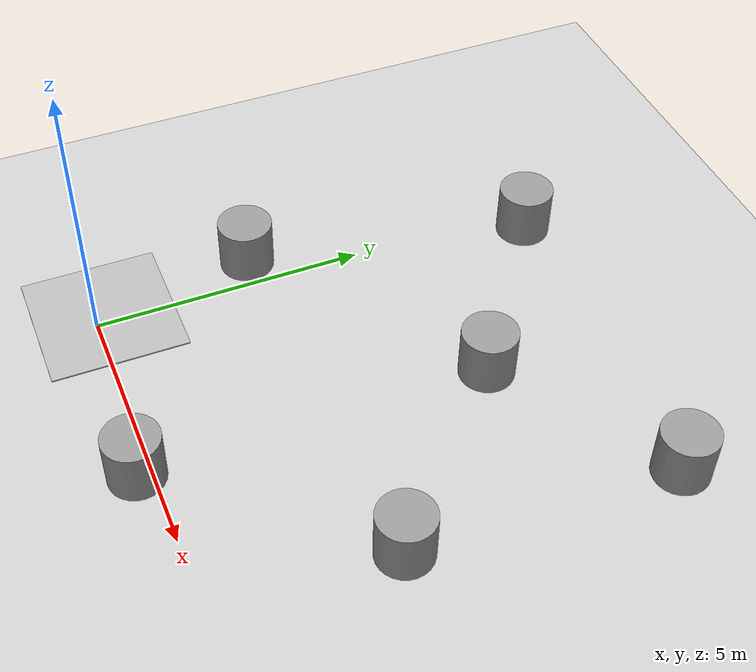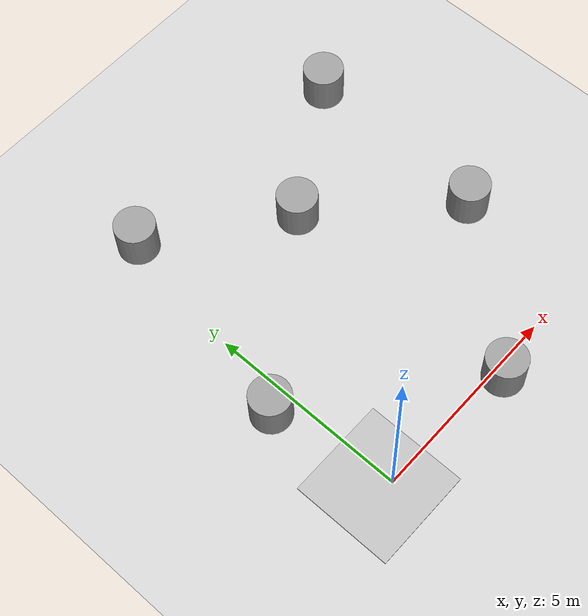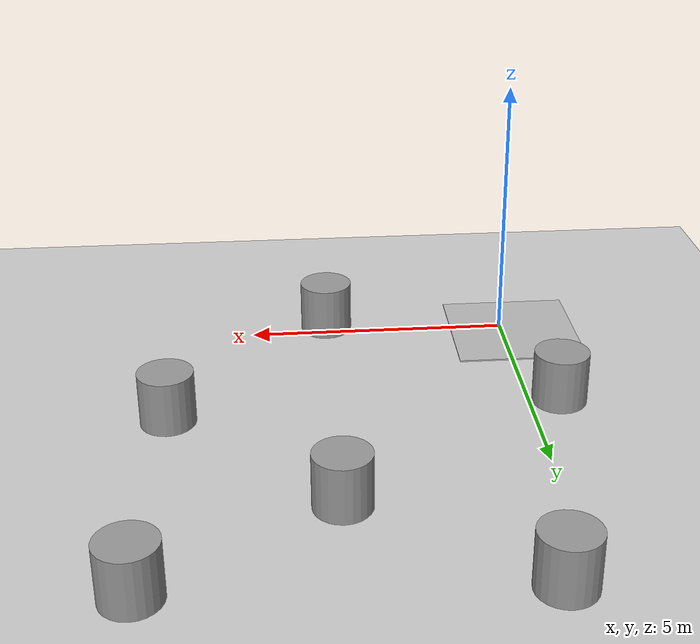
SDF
<sdf version="1.6">
 <world name="default">
  <light name="sun" type="directional">
   <pose>0 0 10 0 -0 0</pose>
   <diffuse>0.8 0.8 0.8 1</diffuse>
   <specular>0.2 0.2 0.2 1</specular>
   <attenuation>
    <range>1000</range>
    <constant>0.9</constant>
    <linear>0.01</linear>
    <quadratic>0.001</quadratic>
   </attenuation>
   <direction>-0.5 0.1 -0.9</direction>
  </light>
  <model name="ground_plane">
   <static>1</static>
   <link name="link">
    <collision name="collision">
     <geometry><plane><normal>0 0 1</normal><size>100 100</size></plane></geometry>
     <surface>
      <contact><collide_bitmask>65535</collide_bitmask></contact>
      <friction><ode><mu>100</mu><mu2>50</mu2></ode></friction>
     </surface>
    </collision>
    <visual name="visual">
     <cast_shadows>0</cast_shadows>
     <geometry><plane><normal>0 0 1</normal><size>100 100</size></plane></geometry>
     <material>
      <script><uri>file://media/materials/scripts/gazebo.material</uri><name>Gazebo/Grey</name></script>
     </material>
    </visual>
   </link>
  </model>
  <gravity>0 0 -9.8</gravity>
  <magnetic_field>6e-06 2.3e-05 -4.2e-05</magnetic_field>
  <atmosphere type="adiabatic"/>
  <physics name="default_physics" default="0" type="ode">
   <max_step_size>0.001</max_step_size>
   <real_time_factor>1</real_time_factor>
   <real_time_update_rate>1000</real_time_update_rate>
  </physics>
  <scene><ambient>0.4 0.4 0.4 1</ambient><background>0.7 0.7 0.7 1</background><shadows>1</shadows></scene>
  <audio><device>default</device></audio>
  <spherical_coordinates>
   <surface_model>EARTH_WGS84</surface_model>
   <latitude_deg>0</latitude_deg>
   <longitude_deg>0</longitude_deg>
   <elevation>0</elevation>
   <heading_deg>0</heading_deg>
  </spherical_coordinates>
  <model name="my_ground_plane">
   <static>1</static>
   <link name="link">
    <collision name="collision"><geometry><box><size>2.5 2.5 0.03</size></box></geometry></collision>
    <visual name="visual">
     <cast_shadows>0</cast_shadows>
     <geometry><box><size>2.5 2.5 0.03</size></box></geometry>
     <material>
      <script>
       <uri>model://my_ground_plane/materials/scripts</uri>
       <uri>model://my_ground_plane/materials/textures/</uri>
       <name>MyGroundPlane/Image</name>
      </script>
     </material>
    </visual>
   </link>
   <pose>-0.2313 0.186561 0 0 -0 0</pose>
  </model>
  <model name="unit_cylinder">
   <link name="link">
    <inertial>
     <mass>1</mass>
     <inertia><ixx>0.145833</ixx><ixy>0</ixy><ixz>0</ixz><iyy>0.145833</iyy><iyz>0</iyz><izz>0.125</izz></inertia>
    </inertial>
    <visual name="visual">
     <geometry><cylinder><radius>0.5</radius><length>1</length></cylinder></geometry>
     <material>
      <script><name>Gazebo/Grey</name><uri>file://media/materials/scripts/gazebo.material</uri></script>
     </material>
    </visual>
    <collision name="collision">
     <geometry><cylinder><radius>0.5</radius><length>1</length></cylinder></geometry>
     <surface>
      <friction>
       <ode><mu>1</mu><mu2>1</mu2><fdir1>0 0 0</fdir1><slip1>0</slip1><slip2>0</slip2></ode>
       <torsional>
        <coefficient>1</coefficient>
        <patch_radius>0</patch_radius>
        <surface_radius>0</surface_radius>
        <use_patch_radius>1</use_patch_radius>
        <ode><slip>0</slip></ode>
       </torsional>
      </friction>
      <bounce><restitution_coefficient>0</restitution_coefficient><threshold>1e+06</threshold></bounce>
      <contact>
       <collide_without_contact>0</collide_without_contact>
       <collide_without_contact_bitmask>1</collide_without_contact_bitmask>
       <collide_bitmask>1</collide_bitmask>
       <ode>
        <soft_cfm>0</soft_cfm>
        <soft_erp>0.2</soft_erp>
        <kp>1e+13</kp>
        <kd>1</kd>
        <max_vel>0.01</max_vel>
        <min_depth>0</min_depth>
       </ode>
       <bullet>
        <split_impulse>1</split_impulse>
        <split_impulse_penetration_threshold>-0.01</split_impulse_penetration_threshold>
        <soft_cfm>0</soft_cfm>
        <soft_erp>0.2</soft_erp>
        <kp>1e+13</kp>
        <kd>1</kd>
       </bullet>
      </contact>
     </surface>
    </collision>
   </link>
   <static>1</static>
   <pose>3.53057 -0.237172 0.5 0 -0 0</pose>
  </model>
  <light name="user_point_light_0" type="point">
   <pose>3.15989 4.33594 1 0 -0 0</pose>
   <diffuse>0.5 0.5 0.5 1</diffuse>
   <specular>0.1 0.1 0.1 1</specular>
   <attenuation>
    <range>20</range>
    <constant>0.5</constant>
    <linear>0.01</linear>
    <quadratic>0.001</quadratic>
   </attenuation>
   <cast_shadows>0</cast_shadows>
   <direction>0 0 -1</direction>
  </light>
  <model name="unit_cylinder_3">
   <link name="link">
    <inertial>
     <mass>1</mass>
     <inertia><ixx>0.145833</ixx><ixy>0</ixy><ixz>0</ixz><iyy>0.145833</iyy><iyz>0</iyz><izz>0.125</izz></inertia>
    </inertial>
    <visual name="visual">
     <geometry><cylinder><radius>0.5</radius><length>1</length></cylinder></geometry>
     <material>
      <script><name>Gazebo/Grey</name><uri>file://media/materials/scripts/gazebo.material</uri></script>
      <shader type="pixel"/>
     </material>
    </visual>
    <collision name="collision">
     <geometry><cylinder><radius>0.5</radius><length>1</length></cylinder></geometry>
     <surface>
      <friction>
       <ode><mu>1</mu><mu2>1</mu2><fdir1>0 0 0</fdir1><slip1>0</slip1><slip2>0</slip2></ode>
       <torsional>
        <coefficient>1</coefficient>
        <patch_radius>0</patch_radius>
        <surface_radius>0</surface_radius>
        <use_patch_radius>1</use_patch_radius>
        <ode><slip>0</slip></ode>
       </torsional>
      </friction>
      <bounce><restitution_coefficient>0</restitution_coefficient><threshold>1e+06</threshold></bounce>
      <contact>
       <collide_without_contact>0</collide_without_contact>
       <collide_without_contact_bitmask>1</collide_without_contact_bitmask>
       <collide_bitmask>1</collide_bitmask>
       <ode>
        <soft_cfm>0</soft_cfm>
        <soft_erp>0.2</soft_erp>
        <kp>1e+13</kp>
        <kd>1</kd>
        <max_vel>0.01</max_vel>
        <min_depth>0</min_depth>
       </ode>
       <bullet>
        <split_impulse>1</split_impulse>
        <split_impulse_penetration_threshold>-0.01</split_impulse_penetration_threshold>
        <soft_cfm>0</soft_cfm>
        <soft_erp>0.2</soft_erp>
        <kp>1e+13</kp>
        <kd>1</kd>
       </bullet>
      </contact>
     </surface>
    </collision>
   </link>
   <static>1</static>
   <pose>3.57829 6.01493 0.499997 3e-06 4e-06 -0</pose>
  </model>
  <model name="unit_cylinder_2">
   <link name="link">
    <inertial>
     <mass>1</mass>
     <inertia><ixx>0.145833</ixx><ixy>0</ixy><ixz>0</ixz><iyy>0.145833</iyy><iyz>0</iyz><izz>0.125</izz></inertia>
    </inertial>
    <visual name="visual">
     <geometry><cylinder><radius>0.5</radius><length>1</length></cylinder></geometry>
     <material>
      <script><name>Gazebo/Grey</name><uri>file://media/materials/scripts/gazebo.material</uri></script>
      <shader type="pixel"/>
     </material>
    </visual>
    <collision name="collision">
     <geometry><cylinder><radius>0.5</radius><length>1</length></cylinder></geometry>
     <surface>
      <friction>
       <ode><mu>1</mu><mu2>1</mu2><fdir1>0 0 0</fdir1><slip1>0</slip1><slip2>0</slip2></ode>
       <torsional>
        <coefficient>1</coefficient>
        <patch_radius>0</patch_radius>
        <surface_radius>0</surface_radius>
        <use_patch_radius>1</use_patch_radius>
        <ode><slip>0</slip></ode>
       </torsional>
      </friction>
      <bounce><restitution_coefficient>0</restitution_coefficient><threshold>1e+06</threshold></bounce>
      <contact>
       <collide_without_contact>0</collide_without_contact>
       <collide_without_contact_bitmask>1</collide_without_contact_bitmask>
       <collide_bitmask>1</collide_bitmask>
       <ode>
        <soft_cfm>0</soft_cfm>
        <soft_erp>0.2</soft_erp>
        <kp>1e+13</kp>
        <kd>1</kd>
        <max_vel>0.01</max_vel>
        <min_depth>0</min_depth>
       </ode>
       <bullet>
        <split_impulse>1</split_impulse>
        <split_impulse_penetration_threshold>-0.01</split_impulse_penetration_threshold>
        <soft_cfm>0</soft_cfm>
        <soft_erp>0.2</soft_erp>
        <kp>1e+13</kp>
        <kd>1</kd>
       </bullet>
      </contact>
     </surface>
    </collision>
   </link>
   <static>1</static>
   <pose>6.7131 7.99398 0.5 0 -0 0</pose>
  </model>
  <model name="unit_cylinder_5">
   <link name="link">
    <inertial>
     <mass>1</mass>
     <inertia><ixx>0.145833</ixx><ixy>0</ixy><ixz>0</ixz><iyy>0.145833</iyy><iyz>0</iyz><izz>0.125</izz></inertia>
    </inertial>
    <visual name="visual">
     <geometry><cylinder><radius>0.5</radius><length>1</length></cylinder></geometry>
     <material>
      <script><name>Gazebo/Grey</name><uri>file://media/materials/scripts/gazebo.material</uri></script>
      <shader type="pixel"/>
     </material>
    </visual>
    <collision name="collision">
     <geometry><cylinder><radius>0.5</radius><length>1</length></cylinder></geometry>
     <surface>
      <friction>
       <ode><mu>1</mu><mu2>1</mu2><fdir1>0 0 0</fdir1><slip1>0</slip1><slip2>0</slip2></ode>
       <torsional>
        <coefficient>1</coefficient>
        <patch_radius>0</patch_radius>
        <surface_radius>0</surface_radius>
        <use_patch_radius>1</use_patch_radius>
        <ode><slip>0</slip></ode>
       </torsional>
      </friction>
      <bounce><restitution_coefficient>0</restitution_coefficient><threshold>1e+06</threshold></bounce>
      <contact>
       <collide_without_contact>0</collide_without_contact>
       <collide_without_contact_bitmask>1</collide_without_contact_bitmask>
       <collide_bitmask>1</collide_bitmask>
       <ode>
        <soft_cfm>0</soft_cfm>
        <soft_erp>0.2</soft_erp>
        <kp>1e+13</kp>
        <kd>1</kd>
        <max_vel>0.01</max_vel>
        <min_depth>0</min_depth>
       </ode>
       <bullet>
        <split_impulse>1</split_impulse>
        <split_impulse_penetration_threshold>-0.01</split_impulse_penetration_threshold>
        <soft_cfm>0</soft_cfm>
        <soft_erp>0.2</soft_erp>
        <kp>1e+13</kp>
        <kd>1</kd>
       </bullet>
      </contact>
     </surface>
    </collision>
   </link>
   <static>1</static>
   <pose>0.5 8.26954 0.499997 2e-06 4e-06 -0</pose>
  </model>
  <model name="unit_cylinder_0">
   <link name="link">
    <inertial>
     <mass>1</mass>
     <inertia><ixx>0.145833</ixx><ixy>0</ixy><ixz>0</ixz><iyy>0.145833</iyy><iyz>0</iyz><izz>0.125</izz></inertia>
    </inertial>
    <visual name="visual">
     <geometry><cylinder><radius>0.5</radius><length>1</length></cylinder></geometry>
     <material>
      <script><name>Gazebo/Grey</name><uri>file://media/materials/scripts/gazebo.material</uri></script>
      <shader type="pixel"/>
     </material>
    </visual>
    <collision name="collision">
     <geometry><cylinder><radius>0.5</radius><length>1</length></cylinder></geometry>
     <surface>
      <friction>
       <ode><mu>1</mu><mu2>1</mu2><fdir1>0 0 0</fdir1><slip1>0</slip1><slip2>0</slip2></ode>
       <torsional>
        <coefficient>1</coefficient>
        <patch_radius>0</patch_radius>
        <surface_radius>0</surface_radius>
        <use_patch_radius>1</use_patch_radius>
        <ode><slip>0</slip></ode>
       </torsional>
      </friction>
      <bounce><restitution_coefficient>0</restitution_coefficient><threshold>1e+06</threshold></bounce>
      <contact>
       <collide_without_contact>0</collide_without_contact>
       <collide_without_contact_bitmask>1</collide_without_contact_bitmask>
       <collide_bitmask>1</collide_bitmask>
       <ode>
        <soft_cfm>0</soft_cfm>
        <soft_erp>0.2</soft_erp>
        <kp>1e+13</kp>
        <kd>1</kd>
        <max_vel>0.01</max_vel>
        <min_depth>0</min_depth>
       </ode>
       <bullet>
        <split_impulse>1</split_impulse>
        <split_impulse_penetration_threshold>-0.01</split_impulse_penetration_threshold>
        <soft_cfm>0</soft_cfm>
        <soft_erp>0.2</soft_erp>
        <kp>1e+13</kp>
        <kd>1</kd>
       </bullet>
      </contact>
     </surface>
    </collision>
   </link>
   <static>1</static>
   <pose>-0.560554 3.03795 0.5 0 0 -6.2e-05</pose>
  </model>
  <model name="unit_cylinder_1">
   <link name="link">
    <inertial>
     <mass>1</mass>
     <inertia><ixx>0.145833</ixx><ixy>0</ixy><ixz>0</ixz><iyy>0.145833</iyy><iyz>0</iyz><izz>0.125</izz></inertia>
    </inertial>
    <visual name="visual">
     <geometry><cylinder><radius>0.5</radius><length>1</length></cylinder></geometry>
     <material>
      <script><name>Gazebo/Grey</name><uri>file://media/materials/scripts/gazebo.material</uri></script>
      <shader type="pixel"/>
     </material>
    </visual>
    <collision name="collision">
     <geometry><cylinder><radius>0.5</radius><length>1</length></cylinder></geometry>
     <surface>
      <friction>
       <ode><mu>1</mu><mu2>1</mu2><fdir1>0 0 0</fdir1><slip1>0</slip1><slip2>0</slip2></ode>
       <torsional>
        <coefficient>1</coefficient>
        <patch_radius>0</patch_radius>
        <surface_radius>0</surface_radius>
        <use_patch_radius>1</use_patch_radius>
        <ode><slip>0</slip></ode>
       </torsional>
      </friction>
      <bounce><restitution_coefficient>0</restitution_coefficient><threshold>1e+06</threshold></bounce>
      <contact>
       <collide_without_contact>0</collide_without_contact>
       <collide_without_contact_bitmask>1</collide_without_contact_bitmask>
       <collide_bitmask>1</collide_bitmask>
       <ode>
        <soft_cfm>0</soft_cfm>
        <soft_erp>0.2</soft_erp>
        <kp>1e+13</kp>
        <kd>1</kd>
        <max_vel>0.01</max_vel>
        <min_depth>0</min_depth>
       </ode>
       <bullet>
        <split_impulse>1</split_impulse>
        <split_impulse_penetration_threshold>-0.01</split_impulse_penetration_threshold>
        <soft_cfm>0</soft_cfm>
        <soft_erp>0.2</soft_erp>
        <kp>1e+13</kp>
        <kd>1</kd>
       </bullet>
      </contact>
     </surface>
    </collision>
   </link>
   <static>1</static>
   <pose>6.5 3.2 0.499992 -2e-06 -4e-06 -0</pose>
  </model>
 </world>
</sdf>
